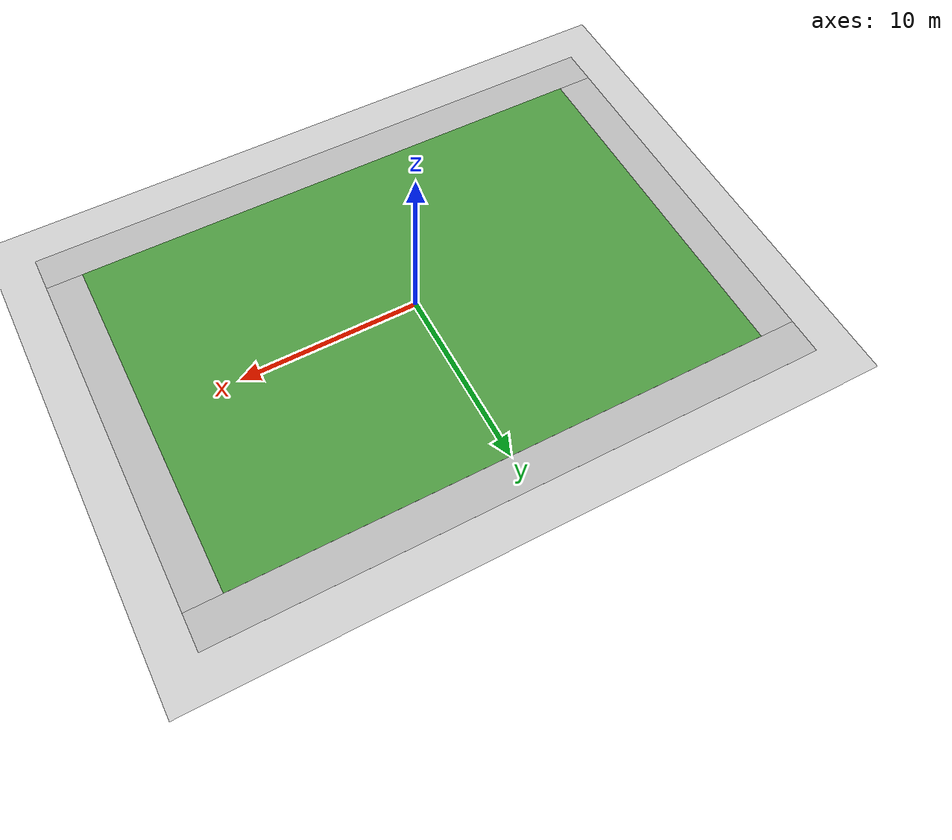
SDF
<sdf version="1.6">
 <world name="default">
  <light name="sun" type="directional">
   <pose>0 0 10 0 -0 0</pose>
   <diffuse>0.8 0.8 0.8 1</diffuse>
   <specular>0.2 0.2 0.2 1</specular>
   <attenuation>
    <range>1000</range>
    <constant>0.9</constant>
    <linear>0.01</linear>
    <quadratic>0.001</quadratic>
   </attenuation>
   <direction>-0.5 0.1 -0.9</direction>
   <spot><inner_angle>0</inner_angle><outer_angle>0</outer_angle><falloff>0</falloff></spot>
  </light>
  <model name="ground_plane">
   <static>1</static>
   <link name="link">
    <collision name="collision">
     <geometry><plane><normal>0 0 1</normal><size>100 100</size></plane></geometry>
     <surface>
      <contact><collide_bitmask>65535</collide_bitmask></contact>
      <friction><ode><mu>100</mu><mu2>50</mu2></ode></friction>
     </surface>
    </collision>
    <visual name="visual">
     <cast_shadows>0</cast_shadows>
     <geometry><plane><normal>0 0 1</normal><size>100 100</size></plane></geometry>
     <material>
      <script><uri>file://media/materials/scripts/gazebo.material</uri><name>Gazebo/Grey</name></script>
     </material>
    </visual>
   </link>
  </model>
  <gravity>0 0 -9.8</gravity>
  <magnetic_field>6e-06 2.3e-05 -4.2e-05</magnetic_field>
  <atmosphere type="adiabatic"/>
  <physics type="ode">
   <max_step_size>0.001</max_step_size>
   <real_time_factor>1</real_time_factor>
   <real_time_update_rate>1000</real_time_update_rate>
  </physics>
  <scene><ambient>0.4 0.4 0.4 1</ambient><background>0.7 0.7 0.7 1</background><shadows>1</shadows></scene>
  <spherical_coordinates>
   <surface_model>EARTH_WGS84</surface_model>
   <latitude_deg>0</latitude_deg>
   <longitude_deg>0</longitude_deg>
   <elevation>0</elevation>
   <heading_deg>0</heading_deg>
  </spherical_coordinates>
  <model name="robocup_3d_field">
   <static>1</static>
   <link name="field">
    <pose>0 0 0.01 0 -0 0</pose>
    <collision name="collision">
     <geometry><plane><normal>0 0 1</normal><size>30 20</size></plane></geometry>
     <surface><friction><ode><mu>100</mu><mu2>50</mu2></ode></friction></surface>
    </collision>
    <visual name="base1">
     <pose>0 11 0.001 0 -0 0</pose>
     <cast_shadows>0</cast_shadows>
     <geometry><plane><normal>0 0 1</normal><size>34 2</size></plane></geometry>
     <material>
      <script>
       <uri>model://robocup_3Dsim_field/materials/scripts/</uri>
       <uri>model://robocup_3Dsim_field/materials/textures/</uri>
       <name>RoboCup/FieldBorder</name>
      </script>
     </material>
    </visual>
    <visual name="base2">
     <pose>0 -11 0.001 0 -0 0</pose>
     <cast_shadows>0</cast_shadows>
     <geometry><plane><normal>0 0 1</normal><size>34 2</size></plane></geometry>
     <material>
      <script>
       <uri>model://robocup_3Dsim_field/materials/scripts/</uri>
       <uri>model://robocup_3Dsim_field/materials/textures/</uri>
       <name>RoboCup/FieldBorder</name>
      </script>
     </material>
    </visual>
    <visual name="base3">
     <pose>16 0 0.001 0 -0 0</pose>
     <cast_shadows>0</cast_shadows>
     <geometry><plane><normal>0 0 1</normal><size>2 20</size></plane></geometry>
     <material>
      <script>
       <uri>model://robocup_3Dsim_field/materials/scripts/</uri>
       <uri>model://robocup_3Dsim_field/materials/textures/</uri>
       <name>RoboCup/FieldBorder</name>
      </script>
     </material>
    </visual>
    <visual name="base4">
     <pose>-16 0 0.001 0 -0 0</pose>
     <cast_shadows>0</cast_shadows>
     <geometry><plane><normal>0 0 1</normal><size>2 20</size></plane></geometry>
     <material>
      <script>
       <uri>model://robocup_3Dsim_field/materials/scripts/</uri>
       <uri>model://robocup_3Dsim_field/materials/textures/</uri>
       <name>RoboCup/FieldBorder</name>
      </script>
     </material>
    </visual>
    <visual name="carpet">
     <cast_shadows>0</cast_shadows>
     <geometry><plane><normal>0 0 1</normal><size>30 20</size></plane></geometry>
     <material>
      <script>
       <uri>model://robocup_3Dsim_field/materials/scripts/</uri>
       <uri>model://robocup_3Dsim_field/materials/textures/</uri>
       <name>RoboCup/Grass</name>
      </script>
     </material>
    </visual>
   </link>
   <pose>0.001575 -0.00309 0 0 -0 0</pose>
  </model>
 </world>
</sdf>
